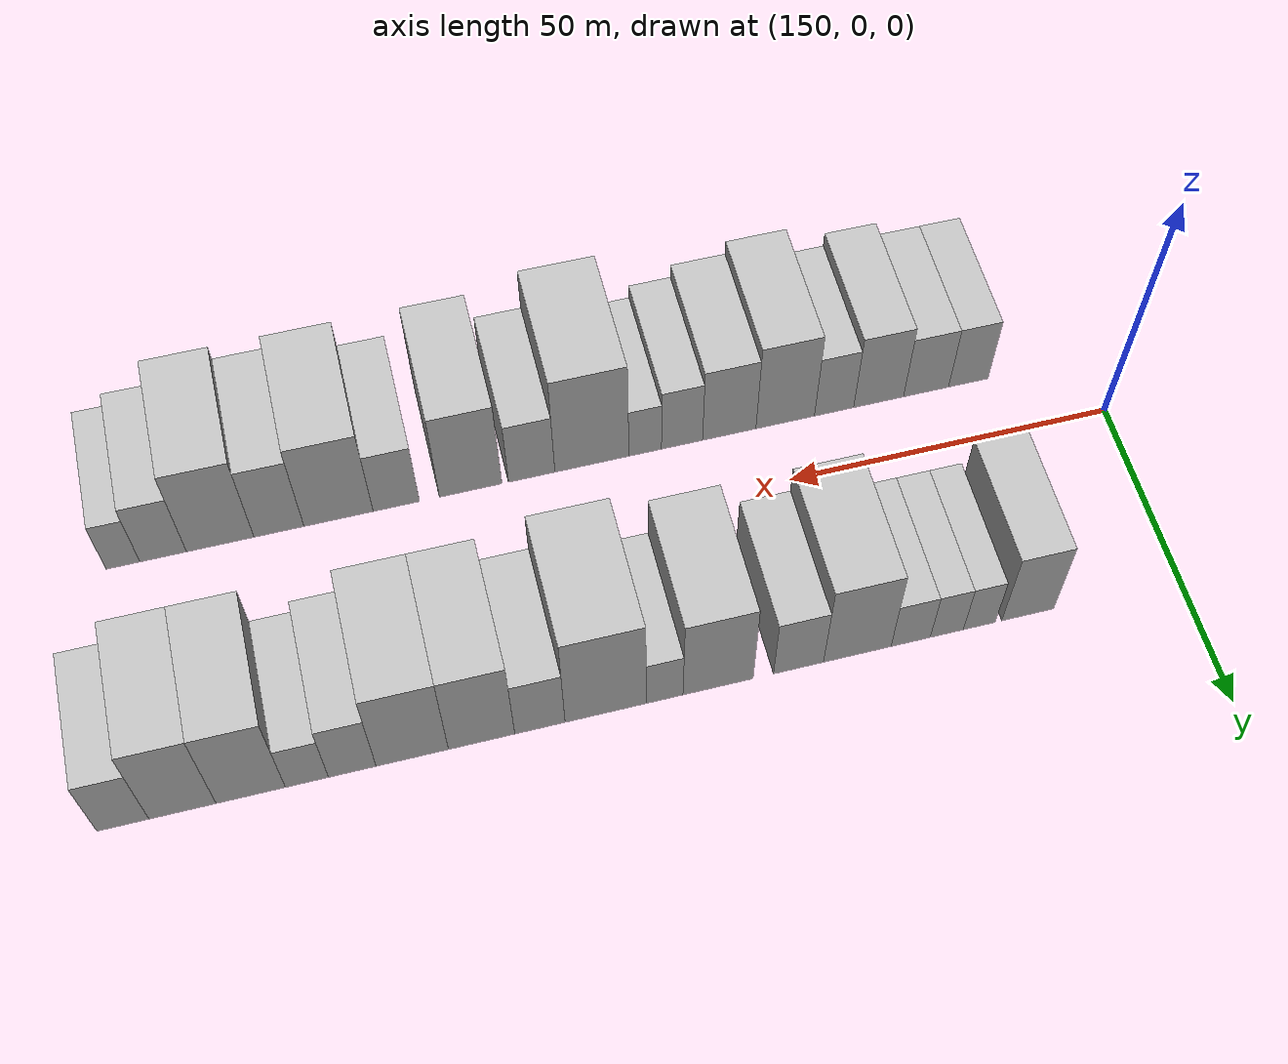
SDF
<sdf version="1.6">
 <world name="default">
  <model name="building_16">
   <static>1</static>
   <pose>173.2774 20.0000 0 0.000000 0.000000 1.570796</pose>
   <link name="link">
    <pose>0 0 9.00 0 0 0</pose>
    <collision name="collision"><geometry><box><size>20.0000 7.9053 18.0000</size></box></geometry></collision>
    <visual name="visual">
     <cast_shadows>0</cast_shadows>
     <geometry><box><size>20.0000 7.9053 18.0000</size></box></geometry>
     <material>
      <script>
       <uri>model://HANNAS_wall/materials/scripts</uri>
       <uri>model://HANNAS_wall/materials/textures</uri>
       <name>vrc/HANNAS_wall</name>
      </script>
     </material>
    </visual>
   </link>
  </model>
  <model name="building_17">
   <static>1</static>
   <pose>180.6325 20.0000 0 0.000000 0.000000 1.570796</pose>
   <link name="link">
    <pose>0 0 6.00 0 0 0</pose>
    <collision name="collision"><geometry><box><size>20.0000 4.8050 12.0000</size></box></geometry></collision>
    <visual name="visual">
     <cast_shadows>0</cast_shadows>
     <geometry><box><size>20.0000 4.8050 12.0000</size></box></geometry>
     <material>
      <script>
       <uri>model://HANNAS_wall/materials/scripts</uri>
       <uri>model://HANNAS_wall/materials/textures</uri>
       <name>vrc/HANNAS_wall</name>
      </script>
     </material>
    </visual>
   </link>
  </model>
  <model name="building_18">
   <static>1</static>
   <pose>185.5237 20.0000 0 0.000000 0.000000 1.570796</pose>
   <link name="link">
    <pose>0 0 6.00 0 0 0</pose>
    <collision name="collision"><geometry><box><size>20.0000 4.9772 12.0000</size></box></geometry></collision>
    <visual name="visual">
     <cast_shadows>0</cast_shadows>
     <geometry><box><size>20.0000 4.9772 12.0000</size></box></geometry>
     <material>
      <script>
       <uri>model://HANNAS_wall/materials/scripts</uri>
       <uri>model://HANNAS_wall/materials/textures</uri>
       <name>vrc/HANNAS_wall</name>
      </script>
     </material>
    </visual>
   </link>
  </model>
  <model name="building_19">
   <static>1</static>
   <pose>190.9537 20.0000 0 0.000000 0.000000 1.570796</pose>
   <link name="link">
    <pose>0 0 6.00 0 0 0</pose>
    <collision name="collision"><geometry><box><size>20.0000 5.8828 12.0000</size></box></geometry></collision>
    <visual name="visual">
     <cast_shadows>0</cast_shadows>
     <geometry><box><size>20.0000 5.8828 12.0000</size></box></geometry>
     <material>
      <script>
       <uri>model://HANNAS_wall/materials/scripts</uri>
       <uri>model://HANNAS_wall/materials/textures</uri>
       <name>vrc/HANNAS_wall</name>
      </script>
     </material>
    </visual>
   </link>
  </model>
  <model name="building_20">
   <static>1</static>
   <pose>198.9248 20.0000 0 0.000000 0.000000 1.570796</pose>
   <link name="link">
    <pose>0 0 10.50 0 0 0</pose>
    <collision name="collision"><geometry><box><size>20.0000 10.0593 21.0000</size></box></geometry></collision>
    <visual name="visual">
     <cast_shadows>0</cast_shadows>
     <geometry><box><size>20.0000 10.0593 21.0000</size></box></geometry>
     <material>
      <script>
       <uri>model://HANNAS_wall/materials/scripts</uri>
       <uri>model://HANNAS_wall/materials/textures</uri>
       <name>vrc/HANNAS_wall</name>
      </script>
     </material>
    </visual>
   </link>
  </model>
  <model name="building_21">
   <static>1</static>
   <pose>207.6356 20.0000 0 0.000000 0.000000 1.570796</pose>
   <link name="link">
    <pose>0 0 7.50 0 0 0</pose>
    <collision name="collision"><geometry><box><size>20.0000 7.3625 15.0000</size></box></geometry></collision>
    <visual name="visual">
     <cast_shadows>0</cast_shadows>
     <geometry><box><size>20.0000 7.3625 15.0000</size></box></geometry>
     <material>
      <script>
       <uri>model://HANNAS_wall/materials/scripts</uri>
       <uri>model://HANNAS_wall/materials/textures</uri>
       <name>vrc/HANNAS_wall</name>
      </script>
     </material>
    </visual>
   </link>
  </model>
  <model name="building_22">
   <static>1</static>
   <pose>219.4383 20.0000 0 0.000000 0.000000 1.570796</pose>
   <link name="link">
    <pose>0 0 10.50 0 0 0</pose>
    <collision name="collision"><geometry><box><size>20.0000 10.2429 21.0000</size></box></geometry></collision>
    <visual name="visual">
     <cast_shadows>0</cast_shadows>
     <geometry><box><size>20.0000 10.2429 21.0000</size></box></geometry>
     <material>
      <script>
       <uri>model://HANNAS_wall/materials/scripts</uri>
       <uri>model://HANNAS_wall/materials/textures</uri>
       <name>vrc/HANNAS_wall</name>
      </script>
     </material>
    </visual>
   </link>
  </model>
  <model name="building_23">
   <static>1</static>
   <pose>227.2261 20.0000 0 0.000000 0.000000 1.570796</pose>
   <link name="link">
    <pose>0 0 6.00 0 0 0</pose>
    <collision name="collision"><geometry><box><size>20.0000 5.3326 12.0000</size></box></geometry></collision>
    <visual name="visual">
     <cast_shadows>0</cast_shadows>
     <geometry><box><size>20.0000 5.3326 12.0000</size></box></geometry>
     <material>
      <script>
       <uri>model://HANNAS_wall/materials/scripts</uri>
       <uri>model://HANNAS_wall/materials/textures</uri>
       <name>vrc/HANNAS_wall</name>
      </script>
     </material>
    </visual>
   </link>
  </model>
  <model name="building_24">
   <static>1</static>
   <pose>235.7231 20.0000 0 0.000000 0.000000 1.570796</pose>
   <link name="link">
    <pose>0 0 12.00 0 0 0</pose>
    <collision name="collision"><geometry><box><size>20.0000 11.6614 24.0000</size></box></geometry></collision>
    <visual name="visual">
     <cast_shadows>0</cast_shadows>
     <geometry><box><size>20.0000 11.6614 24.0000</size></box></geometry>
     <material>
      <script>
       <uri>model://HANNAS_wall/materials/scripts</uri>
       <uri>model://HANNAS_wall/materials/textures</uri>
       <name>vrc/HANNAS_wall</name>
      </script>
     </material>
    </visual>
   </link>
  </model>
  <model name="building_25">
   <static>1</static>
   <pose>245.1435 20.0000 0 0.000000 0.000000 1.570796</pose>
   <link name="link">
    <pose>0 0 7.50 0 0 0</pose>
    <collision name="collision"><geometry><box><size>20.0000 7.1794 15.0000</size></box></geometry></collision>
    <visual name="visual">
     <cast_shadows>0</cast_shadows>
     <geometry><box><size>20.0000 7.1794 15.0000</size></box></geometry>
     <material>
      <script>
       <uri>model://HANNAS_wall/materials/scripts</uri>
       <uri>model://HANNAS_wall/materials/textures</uri>
       <name>vrc/HANNAS_wall</name>
      </script>
     </material>
    </visual>
   </link>
  </model>
  <model name="building_26">
   <static>1</static>
   <pose>253.4254 20.0000 0 0.000000 0.000000 1.570796</pose>
   <link name="link">
    <pose>0 0 10.50 0 0 0</pose>
    <collision name="collision"><geometry><box><size>20.0000 9.3844 21.0000</size></box></geometry></collision>
    <visual name="visual">
     <cast_shadows>0</cast_shadows>
     <geometry><box><size>20.0000 9.3844 21.0000</size></box></geometry>
     <material>
      <script>
       <uri>model://HANNAS_wall/materials/scripts</uri>
       <uri>model://HANNAS_wall/materials/textures</uri>
       <name>vrc/HANNAS_wall</name>
      </script>
     </material>
    </visual>
   </link>
  </model>
  <model name="building_27">
   <static>1</static>
   <pose>263.1952 20.0000 0 0.000000 0.000000 1.570796</pose>
   <link name="link">
    <pose>0 0 10.50 0 0 0</pose>
    <collision name="collision"><geometry><box><size>20.0000 10.1553 21.0000</size></box></geometry></collision>
    <visual name="visual">
     <cast_shadows>0</cast_shadows>
     <geometry><box><size>20.0000 10.1553 21.0000</size></box></geometry>
     <material>
      <script>
       <uri>model://HANNAS_wall/materials/scripts</uri>
       <uri>model://HANNAS_wall/materials/textures</uri>
       <name>vrc/HANNAS_wall</name>
      </script>
     </material>
    </visual>
   </link>
  </model>
  <model name="building_28">
   <static>1</static>
   <pose>271.5869 20.0000 0 0.000000 0.000000 1.570796</pose>
   <link name="link">
    <pose>0 0 7.50 0 0 0</pose>
    <collision name="collision"><geometry><box><size>20.0000 6.6281 15.0000</size></box></geometry></collision>
    <visual name="visual">
     <cast_shadows>0</cast_shadows>
     <geometry><box><size>20.0000 6.6281 15.0000</size></box></geometry>
     <material>
      <script>
       <uri>model://HANNAS_wall/materials/scripts</uri>
       <uri>model://HANNAS_wall/materials/textures</uri>
       <name>vrc/HANNAS_wall</name>
      </script>
     </material>
    </visual>
   </link>
  </model>
  <model name="building_29">
   <static>1</static>
   <pose>277.8833 20.0000 0 0.000000 0.000000 1.570796</pose>
   <link name="link">
    <pose>0 0 6.00 0 0 0</pose>
    <collision name="collision"><geometry><box><size>20.0000 5.9647 12.0000</size></box></geometry></collision>
    <visual name="visual">
     <cast_shadows>0</cast_shadows>
     <geometry><box><size>20.0000 5.9647 12.0000</size></box></geometry>
     <material>
      <script>
       <uri>model://HANNAS_wall/materials/scripts</uri>
       <uri>model://HANNAS_wall/materials/textures</uri>
       <name>vrc/HANNAS_wall</name>
      </script>
     </material>
    </visual>
   </link>
  </model>
  <model name="building_30">
   <static>1</static>
   <pose>285.6277 20.0000 0 0.000000 0.000000 1.570796</pose>
   <link name="link">
    <pose>0 0 10.50 0 0 0</pose>
    <collision name="collision"><geometry><box><size>20.0000 9.5241 21.0000</size></box></geometry></collision>
    <visual name="visual">
     <cast_shadows>0</cast_shadows>
     <geometry><box><size>20.0000 9.5241 21.0000</size></box></geometry>
     <material>
      <script>
       <uri>model://HANNAS_wall/materials/scripts</uri>
       <uri>model://HANNAS_wall/materials/textures</uri>
       <name>vrc/HANNAS_wall</name>
      </script>
     </material>
    </visual>
   </link>
  </model>
  <model name="building_31">
   <static>1</static>
   <pose>294.9660 20.0000 0 0.000000 0.000000 1.570796</pose>
   <link name="link">
    <pose>0 0 10.50 0 0 0</pose>
    <collision name="collision"><geometry><box><size>20.0000 9.1525 21.0000</size></box></geometry></collision>
    <visual name="visual">
     <cast_shadows>0</cast_shadows>
     <geometry><box><size>20.0000 9.1525 21.0000</size></box></geometry>
     <material>
      <script>
       <uri>model://HANNAS_wall/materials/scripts</uri>
       <uri>model://HANNAS_wall/materials/textures</uri>
       <name>vrc/HANNAS_wall</name>
      </script>
     </material>
    </visual>
   </link>
  </model>
  <model name="building_32">
   <static>1</static>
   <pose>303.0632 20.0000 0 0.000000 0.000000 1.570796</pose>
   <link name="link">
    <pose>0 0 7.50 0 0 0</pose>
    <collision name="collision"><geometry><box><size>20.0000 7.0419 15.0000</size></box></geometry></collision>
    <visual name="visual">
     <cast_shadows>0</cast_shadows>
     <geometry><box><size>20.0000 7.0419 15.0000</size></box></geometry>
     <material>
      <script>
       <uri>model://HANNAS_wall/materials/scripts</uri>
       <uri>model://HANNAS_wall/materials/textures</uri>
       <name>vrc/HANNAS_wall</name>
      </script>
     </material>
    </visual>
   </link>
  </model>
  <model name="building_50">
   <static>1</static>
   <pose>168.5839 -20.0000 0 0.000000 0.000000 1.570796</pose>
   <link name="link">
    <pose>0 0 7.50 0 0 0</pose>
    <collision name="collision"><geometry><box><size>20.0000 6.4135 15.0000</size></box></geometry></collision>
    <visual name="visual">
     <cast_shadows>0</cast_shadows>
     <geometry><box><size>20.0000 6.4135 15.0000</size></box></geometry>
     <material>
      <script>
       <uri>model://HANNAS_wall/materials/scripts</uri>
       <uri>model://HANNAS_wall/materials/textures</uri>
       <name>vrc/HANNAS_wall</name>
      </script>
     </material>
    </visual>
   </link>
  </model>
  <model name="building_51">
   <static>1</static>
   <pose>175.4303 -20.0000 0 0.000000 0.000000 1.570796</pose>
   <link name="link">
    <pose>0 0 7.50 0 0 0</pose>
    <collision name="collision"><geometry><box><size>20.0000 7.2793 15.0000</size></box></geometry></collision>
    <visual name="visual">
     <cast_shadows>0</cast_shadows>
     <geometry><box><size>20.0000 7.2793 15.0000</size></box></geometry>
     <material>
      <script>
       <uri>model://HANNAS_wall/materials/scripts</uri>
       <uri>model://HANNAS_wall/materials/textures</uri>
       <name>vrc/HANNAS_wall</name>
      </script>
     </material>
    </visual>
   </link>
  </model>
  <model name="building_52">
   <static>1</static>
   <pose>183.0782 -20.0000 0 0.000000 0.000000 1.570796</pose>
   <link name="link">
    <pose>0 0 9.00 0 0 0</pose>
    <collision name="collision"><geometry><box><size>20.0000 8.0164 18.0000</size></box></geometry></collision>
    <visual name="visual">
     <cast_shadows>0</cast_shadows>
     <geometry><box><size>20.0000 8.0164 18.0000</size></box></geometry>
     <material>
      <script>
       <uri>model://HANNAS_wall/materials/scripts</uri>
       <uri>model://HANNAS_wall/materials/textures</uri>
       <name>vrc/HANNAS_wall</name>
      </script>
     </material>
    </visual>
   </link>
  </model>
  <model name="building_53">
   <static>1</static>
   <pose>190.2061 -20.0000 0 0.000000 0.000000 1.570796</pose>
   <link name="link">
    <pose>0 0 7.50 0 0 0</pose>
    <collision name="collision"><geometry><box><size>20.0000 6.2394 15.0000</size></box></geometry></collision>
    <visual name="visual">
     <cast_shadows>0</cast_shadows>
     <geometry><box><size>20.0000 6.2394 15.0000</size></box></geometry>
     <material>
      <script>
       <uri>model://HANNAS_wall/materials/scripts</uri>
       <uri>model://HANNAS_wall/materials/textures</uri>
       <name>vrc/HANNAS_wall</name>
      </script>
     </material>
    </visual>
   </link>
  </model>
  <model name="building_54">
   <static>1</static>
   <pose>197.9673 -20.0000 0 0.000000 0.000000 1.570796</pose>
   <link name="link">
    <pose>0 0 10.50 0 0 0</pose>
    <collision name="collision"><geometry><box><size>20.0000 9.2831 21.0000</size></box></geometry></collision>
    <visual name="visual">
     <cast_shadows>0</cast_shadows>
     <geometry><box><size>20.0000 9.2831 21.0000</size></box></geometry>
     <material>
      <script>
       <uri>model://HANNAS_wall/materials/scripts</uri>
       <uri>model://HANNAS_wall/materials/textures</uri>
       <name>vrc/HANNAS_wall</name>
      </script>
     </material>
    </visual>
   </link>
  </model>
  <model name="building_55">
   <static>1</static>
   <pose>206.8067 -20.0000 0 0.000000 0.000000 1.570796</pose>
   <link name="link">
    <pose>0 0 9.00 0 0 0</pose>
    <collision name="collision"><geometry><box><size>20.0000 8.3957 18.0000</size></box></geometry></collision>
    <visual name="visual">
     <cast_shadows>0</cast_shadows>
     <geometry><box><size>20.0000 8.3957 18.0000</size></box></geometry>
     <material>
      <script>
       <uri>model://HANNAS_wall/materials/scripts</uri>
       <uri>model://HANNAS_wall/materials/textures</uri>
       <name>vrc/HANNAS_wall</name>
      </script>
     </material>
    </visual>
   </link>
  </model>
  <model name="building_56">
   <static>1</static>
   <pose>214.2137 -20.0000 0 0.000000 0.000000 1.570796</pose>
   <link name="link">
    <pose>0 0 7.50 0 0 0</pose>
    <collision name="collision"><geometry><box><size>20.0000 6.4182 15.0000</size></box></geometry></collision>
    <visual name="visual">
     <cast_shadows>0</cast_shadows>
     <geometry><box><size>20.0000 6.4182 15.0000</size></box></geometry>
     <material>
      <script>
       <uri>model://HANNAS_wall/materials/scripts</uri>
       <uri>model://HANNAS_wall/materials/textures</uri>
       <name>vrc/HANNAS_wall</name>
      </script>
     </material>
    </visual>
   </link>
  </model>
  <model name="building_57">
   <static>1</static>
   <pose>219.9508 -20.0000 0 0.000000 0.000000 1.570796</pose>
   <link name="link">
    <pose>0 0 6.00 0 0 0</pose>
    <collision name="collision"><geometry><box><size>20.0000 5.0561 12.0000</size></box></geometry></collision>
    <visual name="visual">
     <cast_shadows>0</cast_shadows>
     <geometry><box><size>20.0000 5.0561 12.0000</size></box></geometry>
     <material>
      <script>
       <uri>model://HANNAS_wall/materials/scripts</uri>
       <uri>model://HANNAS_wall/materials/textures</uri>
       <name>vrc/HANNAS_wall</name>
      </script>
     </material>
    </visual>
   </link>
  </model>
  <model name="building_58">
   <static>1</static>
   <pose>228.2006 -20.0000 0 0.000000 0.000000 1.570796</pose>
   <link name="link">
    <pose>0 0 12.00 0 0 0</pose>
    <collision name="collision"><geometry><box><size>20.0000 11.4434 24.0000</size></box></geometry></collision>
    <visual name="visual">
     <cast_shadows>0</cast_shadows>
     <geometry><box><size>20.0000 11.4434 24.0000</size></box></geometry>
     <material>
      <script>
       <uri>model://HANNAS_wall/materials/scripts</uri>
       <uri>model://HANNAS_wall/materials/textures</uri>
       <name>vrc/HANNAS_wall</name>
      </script>
     </material>
    </visual>
   </link>
  </model>
  <model name="building_59">
   <static>1</static>
   <pose>237.4774 -20.0000 0 0.000000 0.000000 1.570796</pose>
   <link name="link">
    <pose>0 0 7.50 0 0 0</pose>
    <collision name="collision"><geometry><box><size>20.0000 7.1101 15.0000</size></box></geometry></collision>
    <visual name="visual">
     <cast_shadows>0</cast_shadows>
     <geometry><box><size>20.0000 7.1101 15.0000</size></box></geometry>
     <material>
      <script>
       <uri>model://HANNAS_wall/materials/scripts</uri>
       <uri>model://HANNAS_wall/materials/textures</uri>
       <name>vrc/HANNAS_wall</name>
      </script>
     </material>
    </visual>
   </link>
  </model>
  <model name="building_60">
   <static>1</static>
   <pose>246.7958 -20.0000 0 0.000000 0.000000 1.570796</pose>
   <link name="link">
    <pose>0 0 10.50 0 0 0</pose>
    <collision name="collision"><geometry><box><size>20.0000 9.5267 21.0000</size></box></geometry></collision>
    <visual name="visual">
     <cast_shadows>0</cast_shadows>
     <geometry><box><size>20.0000 9.5267 21.0000</size></box></geometry>
     <material>
      <script>
       <uri>model://HANNAS_wall/materials/scripts</uri>
       <uri>model://HANNAS_wall/materials/textures</uri>
       <name>vrc/HANNAS_wall</name>
      </script>
     </material>
    </visual>
   </link>
  </model>
  <model name="building_61">
   <static>1</static>
   <pose>258.0478 -20.0000 0 0.000000 0.000000 1.570796</pose>
   <link name="link">
    <pose>0 0 7.50 0 0 0</pose>
    <collision name="collision"><geometry><box><size>20.0000 6.9773 15.0000</size></box></geometry></collision>
    <visual name="visual">
     <cast_shadows>0</cast_shadows>
     <geometry><box><size>20.0000 6.9773 15.0000</size></box></geometry>
     <material>
      <script>
       <uri>model://HANNAS_wall/materials/scripts</uri>
       <uri>model://HANNAS_wall/materials/textures</uri>
       <name>vrc/HANNAS_wall</name>
      </script>
     </material>
    </visual>
   </link>
  </model>
  <model name="building_62">
   <static>1</static>
   <pose>266.7152 -20.0000 0 0.000000 0.000000 1.570796</pose>
   <link name="link">
    <pose>0 0 10.50 0 0 0</pose>
    <collision name="collision"><geometry><box><size>20.0000 10.3575 21.0000</size></box></geometry></collision>
    <visual name="visual">
     <cast_shadows>0</cast_shadows>
     <geometry><box><size>20.0000 10.3575 21.0000</size></box></geometry>
     <material>
      <script>
       <uri>model://HANNAS_wall/materials/scripts</uri>
       <uri>model://HANNAS_wall/materials/textures</uri>
       <name>vrc/HANNAS_wall</name>
      </script>
     </material>
    </visual>
   </link>
  </model>
  <model name="building_63">
   <static>1</static>
   <pose>275.6008 -20.0000 0 0.000000 0.000000 1.570796</pose>
   <link name="link">
    <pose>0 0 9.00 0 0 0</pose>
    <collision name="collision"><geometry><box><size>20.0000 7.4138 18.0000</size></box></geometry></collision>
    <visual name="visual">
     <cast_shadows>0</cast_shadows>
     <geometry><box><size>20.0000 7.4138 18.0000</size></box></geometry>
     <material>
      <script>
       <uri>model://HANNAS_wall/materials/scripts</uri>
       <uri>model://HANNAS_wall/materials/textures</uri>
       <name>vrc/HANNAS_wall</name>
      </script>
     </material>
    </visual>
   </link>
  </model>
  <model name="building_64">
   <static>1</static>
   <pose>284.2835 -20.0000 0 0.000000 0.000000 1.570796</pose>
   <link name="link">
    <pose>0 0 10.50 0 0 0</pose>
    <collision name="collision"><geometry><box><size>20.0000 9.9515 21.0000</size></box></geometry></collision>
    <visual name="visual">
     <cast_shadows>0</cast_shadows>
     <geometry><box><size>20.0000 9.9515 21.0000</size></box></geometry>
     <material>
      <script>
       <uri>model://HANNAS_wall/materials/scripts</uri>
       <uri>model://HANNAS_wall/materials/textures</uri>
       <name>vrc/HANNAS_wall</name>
      </script>
     </material>
    </visual>
   </link>
  </model>
  <model name="building_65">
   <static>1</static>
   <pose>292.6617 -20.0000 0 0.000000 0.000000 1.570796</pose>
   <link name="link">
    <pose>0 0 7.50 0 0 0</pose>
    <collision name="collision"><geometry><box><size>20.0000 6.8050 15.0000</size></box></geometry></collision>
    <visual name="visual">
     <cast_shadows>0</cast_shadows>
     <geometry><box><size>20.0000 6.8050 15.0000</size></box></geometry>
     <material>
      <script>
       <uri>model://HANNAS_wall/materials/scripts</uri>
       <uri>model://HANNAS_wall/materials/textures</uri>
       <name>vrc/HANNAS_wall</name>
      </script>
     </material>
    </visual>
   </link>
  </model>
  <model name="building_66">
   <static>1</static>
   <pose>298.5239 -20.0000 0 0.000000 0.000000 1.570796</pose>
   <link name="link">
    <pose>0 0 6.00 0 0 0</pose>
    <collision name="collision"><geometry><box><size>20.0000 4.9195 12.0000</size></box></geometry></collision>
    <visual name="visual">
     <cast_shadows>0</cast_shadows>
     <geometry><box><size>20.0000 4.9195 12.0000</size></box></geometry>
     <material>
      <script>
       <uri>model://HANNAS_wall/materials/scripts</uri>
       <uri>model://HANNAS_wall/materials/textures</uri>
       <name>vrc/HANNAS_wall</name>
      </script>
     </material>
    </visual>
   </link>
  </model>
 </world>
</sdf>
